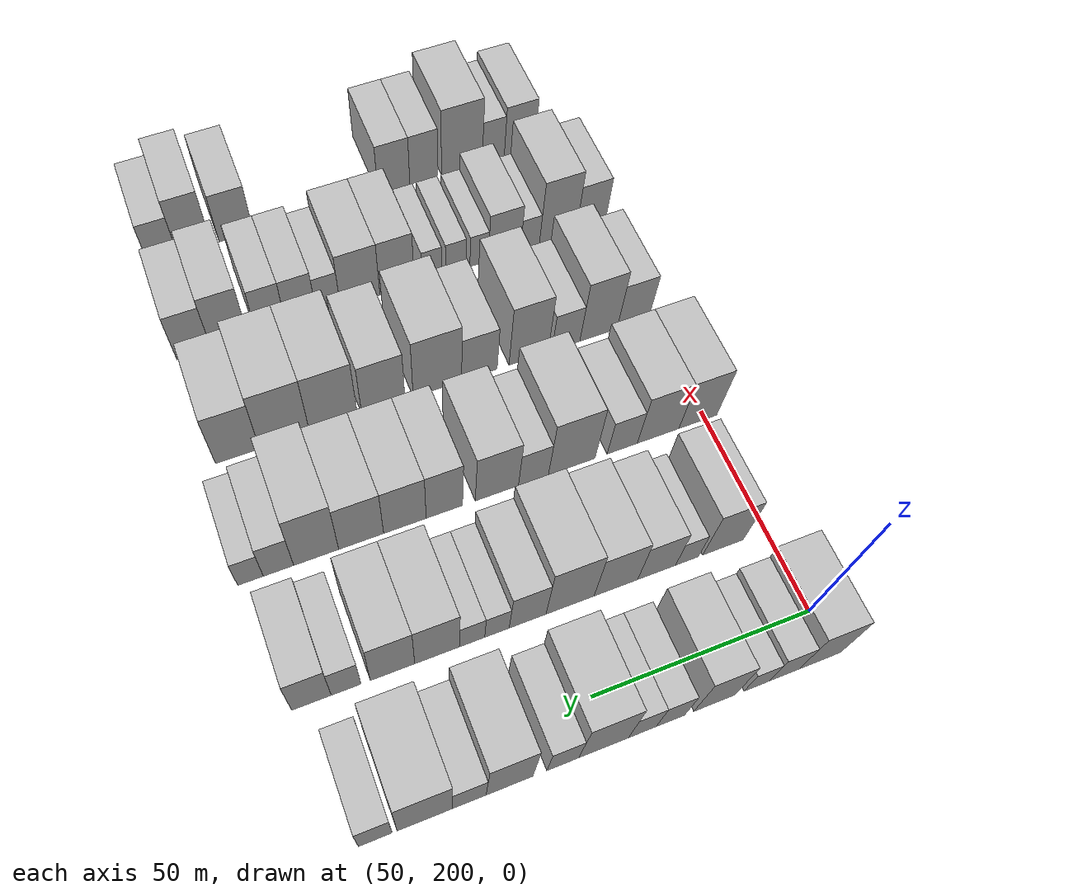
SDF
<sdf version="1.6">
 <world name="default">
  <model name="building_82">
   <static>1</static>
   <pose>50.0000 203.0942 0 0.000000 0.000000 0.000000</pose>
   <link name="link">
    <pose>0 0 10.50 0 0 0</pose>
    <collision name="collision"><geometry><box><size>20.0000 9.7704 21.0000</size></box></geometry></collision>
    <visual name="visual">
     <cast_shadows>0</cast_shadows>
     <geometry><box><size>20.0000 9.7704 21.0000</size></box></geometry>
     <material>
      <script>
       <uri>model://HANNAS_wall/materials/scripts</uri>
       <uri>model://HANNAS_wall/materials/textures</uri>
       <name>vrc/HANNAS_wall</name>
      </script>
     </material>
    </visual>
   </link>
  </model>
  <model name="building_83">
   <static>1</static>
   <pose>50.0000 211.3995 0 0.000000 0.000000 0.000000</pose>
   <link name="link">
    <pose>0 0 7.50 0 0 0</pose>
    <collision name="collision"><geometry><box><size>20.0000 6.8400 15.0000</size></box></geometry></collision>
    <visual name="visual">
     <cast_shadows>0</cast_shadows>
     <geometry><box><size>20.0000 6.8400 15.0000</size></box></geometry>
     <material>
      <script>
       <uri>model://HANNAS_wall/materials/scripts</uri>
       <uri>model://HANNAS_wall/materials/textures</uri>
       <name>vrc/HANNAS_wall</name>
      </script>
     </material>
    </visual>
   </link>
  </model>
  <model name="building_84">
   <static>1</static>
   <pose>50.0000 217.7072 0 0.000000 0.000000 0.000000</pose>
   <link name="link">
    <pose>0 0 6.00 0 0 0</pose>
    <collision name="collision"><geometry><box><size>20.0000 5.7755 12.0000</size></box></geometry></collision>
    <visual name="visual">
     <cast_shadows>0</cast_shadows>
     <geometry><box><size>20.0000 5.7755 12.0000</size></box></geometry>
     <material>
      <script>
       <uri>model://HANNAS_wall/materials/scripts</uri>
       <uri>model://HANNAS_wall/materials/textures</uri>
       <name>vrc/HANNAS_wall</name>
      </script>
     </material>
    </visual>
   </link>
  </model>
  <model name="building_85">
   <static>1</static>
   <pose>50.0000 227.2619 0 0.000000 0.000000 0.000000</pose>
   <link name="link">
    <pose>0 0 10.50 0 0 0</pose>
    <collision name="collision"><geometry><box><size>20.0000 9.3340 21.0000</size></box></geometry></collision>
    <visual name="visual">
     <cast_shadows>0</cast_shadows>
     <geometry><box><size>20.0000 9.3340 21.0000</size></box></geometry>
     <material>
      <script>
       <uri>model://HANNAS_wall/materials/scripts</uri>
       <uri>model://HANNAS_wall/materials/textures</uri>
       <name>vrc/HANNAS_wall</name>
      </script>
     </material>
    </visual>
   </link>
  </model>
  <model name="building_86">
   <static>1</static>
   <pose>50.0000 237.1040 0 0.000000 0.000000 0.000000</pose>
   <link name="link">
    <pose>0 0 7.50 0 0 0</pose>
    <collision name="collision"><geometry><box><size>20.0000 6.3502 15.0000</size></box></geometry></collision>
    <visual name="visual">
     <cast_shadows>0</cast_shadows>
     <geometry><box><size>20.0000 6.3502 15.0000</size></box></geometry>
     <material>
      <script>
       <uri>model://HANNAS_wall/materials/scripts</uri>
       <uri>model://HANNAS_wall/materials/textures</uri>
       <name>vrc/HANNAS_wall</name>
      </script>
     </material>
    </visual>
   </link>
  </model>
  <model name="building_87">
   <static>1</static>
   <pose>50.0000 243.3285 0 0.000000 0.000000 0.000000</pose>
   <link name="link">
    <pose>0 0 7.50 0 0 0</pose>
    <collision name="collision"><geometry><box><size>20.0000 6.0988 15.0000</size></box></geometry></collision>
    <visual name="visual">
     <cast_shadows>0</cast_shadows>
     <geometry><box><size>20.0000 6.0988 15.0000</size></box></geometry>
     <material>
      <script>
       <uri>model://HANNAS_wall/materials/scripts</uri>
       <uri>model://HANNAS_wall/materials/textures</uri>
       <name>vrc/HANNAS_wall</name>
      </script>
     </material>
    </visual>
   </link>
  </model>
  <model name="building_88">
   <static>1</static>
   <pose>50.0000 251.7895 0 0.000000 0.000000 0.000000</pose>
   <link name="link">
    <pose>0 0 12.00 0 0 0</pose>
    <collision name="collision"><geometry><box><size>20.0000 10.8230 24.0000</size></box></geometry></collision>
    <visual name="visual">
     <cast_shadows>0</cast_shadows>
     <geometry><box><size>20.0000 10.8230 24.0000</size></box></geometry>
     <material>
      <script>
       <uri>model://HANNAS_wall/materials/scripts</uri>
       <uri>model://HANNAS_wall/materials/textures</uri>
       <name>vrc/HANNAS_wall</name>
      </script>
     </material>
    </visual>
   </link>
  </model>
  <model name="building_89">
   <static>1</static>
   <pose>50.0000 260.6122 0 0.000000 0.000000 0.000000</pose>
   <link name="link">
    <pose>0 0 7.50 0 0 0</pose>
    <collision name="collision"><geometry><box><size>20.0000 6.8223 15.0000</size></box></geometry></collision>
    <visual name="visual">
     <cast_shadows>0</cast_shadows>
     <geometry><box><size>20.0000 6.8223 15.0000</size></box></geometry>
     <material>
      <script>
       <uri>model://HANNAS_wall/materials/scripts</uri>
       <uri>model://HANNAS_wall/materials/textures</uri>
       <name>vrc/HANNAS_wall</name>
      </script>
     </material>
    </visual>
   </link>
  </model>
  <model name="building_90">
   <static>1</static>
   <pose>50.0000 271.9466 0 0.000000 0.000000 0.000000</pose>
   <link name="link">
    <pose>0 0 12.00 0 0 0</pose>
    <collision name="collision"><geometry><box><size>20.0000 9.8465 24.0000</size></box></geometry></collision>
    <visual name="visual">
     <cast_shadows>0</cast_shadows>
     <geometry><box><size>20.0000 9.8465 24.0000</size></box></geometry>
     <material>
      <script>
       <uri>model://HANNAS_wall/materials/scripts</uri>
       <uri>model://HANNAS_wall/materials/textures</uri>
       <name>vrc/HANNAS_wall</name>
      </script>
     </material>
    </visual>
   </link>
  </model>
  <model name="building_91">
   <static>1</static>
   <pose>50.0000 280.3756 0 0.000000 0.000000 0.000000</pose>
   <link name="link">
    <pose>0 0 7.50 0 0 0</pose>
    <collision name="collision"><geometry><box><size>20.0000 7.0116 15.0000</size></box></geometry></collision>
    <visual name="visual">
     <cast_shadows>0</cast_shadows>
     <geometry><box><size>20.0000 7.0116 15.0000</size></box></geometry>
     <material>
      <script>
       <uri>model://HANNAS_wall/materials/scripts</uri>
       <uri>model://HANNAS_wall/materials/textures</uri>
       <name>vrc/HANNAS_wall</name>
      </script>
     </material>
    </visual>
   </link>
  </model>
  <model name="building_92">
   <static>1</static>
   <pose>50.0000 289.5427 0 0.000000 0.000000 0.000000</pose>
   <link name="link">
    <pose>0 0 12.00 0 0 0</pose>
    <collision name="collision"><geometry><box><size>20.0000 11.3225 24.0000</size></box></geometry></collision>
    <visual name="visual">
     <cast_shadows>0</cast_shadows>
     <geometry><box><size>20.0000 11.3225 24.0000</size></box></geometry>
     <material>
      <script>
       <uri>model://HANNAS_wall/materials/scripts</uri>
       <uri>model://HANNAS_wall/materials/textures</uri>
       <name>vrc/HANNAS_wall</name>
      </script>
     </material>
    </visual>
   </link>
  </model>
  <model name="building_93">
   <static>1</static>
   <pose>50.0000 299.6038 0 0.000000 0.000000 0.000000</pose>
   <link name="link">
    <pose>0 0 7.50 0 0 0</pose>
    <collision name="collision"><geometry><box><size>20.0000 6.7997 15.0000</size></box></geometry></collision>
    <visual name="visual">
     <cast_shadows>0</cast_shadows>
     <geometry><box><size>20.0000 6.7997 15.0000</size></box></geometry>
     <material>
      <script>
       <uri>model://HANNAS_wall/materials/scripts</uri>
       <uri>model://HANNAS_wall/materials/textures</uri>
       <name>vrc/HANNAS_wall</name>
      </script>
     </material>
    </visual>
   </link>
  </model>
  <model name="building_196">
   <static>1</static>
   <pose>79.0000 210.3995 0 0.000000 0.000000 0.000000</pose>
   <link name="link">
    <pose>0 0 10.50 0 0 0</pose>
    <collision name="collision"><geometry><box><size>20.0000 9.7364 21.0000</size></box></geometry></collision>
    <visual name="visual">
     <cast_shadows>0</cast_shadows>
     <geometry><box><size>20.0000 9.7364 21.0000</size></box></geometry>
     <material>
      <script>
       <uri>model://HANNAS_wall/materials/scripts</uri>
       <uri>model://HANNAS_wall/materials/textures</uri>
       <name>vrc/HANNAS_wall</name>
      </script>
     </material>
    </visual>
   </link>
  </model>
  <model name="building_197">
   <static>1</static>
   <pose>79.0000 218.9919 0 0.000000 0.000000 0.000000</pose>
   <link name="link">
    <pose>0 0 6.00 0 0 0</pose>
    <collision name="collision"><geometry><box><size>20.0000 5.4484 12.0000</size></box></geometry></collision>
    <visual name="visual">
     <cast_shadows>0</cast_shadows>
     <geometry><box><size>20.0000 5.4484 12.0000</size></box></geometry>
     <material>
      <script>
       <uri>model://HANNAS_wall/materials/scripts</uri>
       <uri>model://HANNAS_wall/materials/textures</uri>
       <name>vrc/HANNAS_wall</name>
      </script>
     </material>
    </visual>
   </link>
  </model>
  <model name="building_198">
   <static>1</static>
   <pose>79.0000 226.1891 0 0.000000 0.000000 0.000000</pose>
   <link name="link">
    <pose>0 0 9.00 0 0 0</pose>
    <collision name="collision"><geometry><box><size>20.0000 8.9461 18.0000</size></box></geometry></collision>
    <visual name="visual">
     <cast_shadows>0</cast_shadows>
     <geometry><box><size>20.0000 8.9461 18.0000</size></box></geometry>
     <material>
      <script>
       <uri>model://HANNAS_wall/materials/scripts</uri>
       <uri>model://HANNAS_wall/materials/textures</uri>
       <name>vrc/HANNAS_wall</name>
      </script>
     </material>
    </visual>
   </link>
  </model>
  <model name="building_199">
   <static>1</static>
   <pose>79.0000 235.7266 0 0.000000 0.000000 0.000000</pose>
   <link name="link">
    <pose>0 0 10.50 0 0 0</pose>
    <collision name="collision"><geometry><box><size>20.0000 10.1289 21.0000</size></box></geometry></collision>
    <visual name="visual">
     <cast_shadows>0</cast_shadows>
     <geometry><box><size>20.0000 10.1289 21.0000</size></box></geometry>
     <material>
      <script>
       <uri>model://HANNAS_wall/materials/scripts</uri>
       <uri>model://HANNAS_wall/materials/textures</uri>
       <name>vrc/HANNAS_wall</name>
      </script>
     </material>
    </visual>
   </link>
  </model>
  <model name="building_200">
   <static>1</static>
   <pose>79.0000 246.3133 0 0.000000 0.000000 0.000000</pose>
   <link name="link">
    <pose>0 0 12.00 0 0 0</pose>
    <collision name="collision"><geometry><box><size>20.0000 11.0445 24.0000</size></box></geometry></collision>
    <visual name="visual">
     <cast_shadows>0</cast_shadows>
     <geometry><box><size>20.0000 11.0445 24.0000</size></box></geometry>
     <material>
      <script>
       <uri>model://HANNAS_wall/materials/scripts</uri>
       <uri>model://HANNAS_wall/materials/textures</uri>
       <name>vrc/HANNAS_wall</name>
      </script>
     </material>
    </visual>
   </link>
  </model>
  <model name="building_201">
   <static>1</static>
   <pose>79.0000 255.9763 0 0.000000 0.000000 0.000000</pose>
   <link name="link">
    <pose>0 0 9.00 0 0 0</pose>
    <collision name="collision"><geometry><box><size>20.0000 8.2816 18.0000</size></box></geometry></collision>
    <visual name="visual">
     <cast_shadows>0</cast_shadows>
     <geometry><box><size>20.0000 8.2816 18.0000</size></box></geometry>
     <material>
      <script>
       <uri>model://HANNAS_wall/materials/scripts</uri>
       <uri>model://HANNAS_wall/materials/textures</uri>
       <name>vrc/HANNAS_wall</name>
      </script>
     </material>
    </visual>
   </link>
  </model>
  <model name="building_202">
   <static>1</static>
   <pose>79.0000 262.8572 0 0.000000 0.000000 0.000000</pose>
   <link name="link">
    <pose>0 0 6.00 0 0 0</pose>
    <collision name="collision"><geometry><box><size>20.0000 5.4803 12.0000</size></box></geometry></collision>
    <visual name="visual">
     <cast_shadows>0</cast_shadows>
     <geometry><box><size>20.0000 5.4803 12.0000</size></box></geometry>
     <material>
      <script>
       <uri>model://HANNAS_wall/materials/scripts</uri>
       <uri>model://HANNAS_wall/materials/textures</uri>
       <name>vrc/HANNAS_wall</name>
      </script>
     </material>
    </visual>
   </link>
  </model>
  <model name="building_203">
   <static>1</static>
   <pose>79.0000 268.4112 0 0.000000 0.000000 0.000000</pose>
   <link name="link">
    <pose>0 0 6.00 0 0 0</pose>
    <collision name="collision"><geometry><box><size>20.0000 5.6276 12.0000</size></box></geometry></collision>
    <visual name="visual">
     <cast_shadows>0</cast_shadows>
     <geometry><box><size>20.0000 5.6276 12.0000</size></box></geometry>
     <material>
      <script>
       <uri>model://HANNAS_wall/materials/scripts</uri>
       <uri>model://HANNAS_wall/materials/textures</uri>
       <name>vrc/HANNAS_wall</name>
      </script>
     </material>
    </visual>
   </link>
  </model>
  <model name="building_204">
   <static>1</static>
   <pose>79.0000 276.1174 0 0.000000 0.000000 0.000000</pose>
   <link name="link">
    <pose>0 0 10.50 0 0 0</pose>
    <collision name="collision"><geometry><box><size>20.0000 9.7848 21.0000</size></box></geometry></collision>
    <visual name="visual">
     <cast_shadows>0</cast_shadows>
     <geometry><box><size>20.0000 9.7848 21.0000</size></box></geometry>
     <material>
      <script>
       <uri>model://HANNAS_wall/materials/scripts</uri>
       <uri>model://HANNAS_wall/materials/textures</uri>
       <name>vrc/HANNAS_wall</name>
      </script>
     </material>
    </visual>
   </link>
  </model>
  <model name="building_205">
   <static>1</static>
   <pose>79.0000 285.8160 0 0.000000 0.000000 0.000000</pose>
   <link name="link">
    <pose>0 0 10.50 0 0 0</pose>
    <collision name="collision"><geometry><box><size>20.0000 9.6124 21.0000</size></box></geometry></collision>
    <visual name="visual">
     <cast_shadows>0</cast_shadows>
     <geometry><box><size>20.0000 9.6124 21.0000</size></box></geometry>
     <material>
      <script>
       <uri>model://HANNAS_wall/materials/scripts</uri>
       <uri>model://HANNAS_wall/materials/textures</uri>
       <name>vrc/HANNAS_wall</name>
      </script>
     </material>
    </visual>
   </link>
  </model>
  <model name="building_206">
   <static>1</static>
   <pose>79.0000 295.7962 0 0.000000 0.000000 0.000000</pose>
   <link name="link">
    <pose>0 0 7.50 0 0 0</pose>
    <collision name="collision"><geometry><box><size>20.0000 6.3478 15.0000</size></box></geometry></collision>
    <visual name="visual">
     <cast_shadows>0</cast_shadows>
     <geometry><box><size>20.0000 6.3478 15.0000</size></box></geometry>
     <material>
      <script>
       <uri>model://HANNAS_wall/materials/scripts</uri>
       <uri>model://HANNAS_wall/materials/textures</uri>
       <name>vrc/HANNAS_wall</name>
      </script>
     </material>
    </visual>
   </link>
  </model>
  <model name="building_207">
   <static>1</static>
   <pose>79.0000 303.1531 0 0.000000 0.000000 0.000000</pose>
   <link name="link">
    <pose>0 0 9.00 0 0 0</pose>
    <collision name="collision"><geometry><box><size>20.0000 8.3661 18.0000</size></box></geometry></collision>
    <visual name="visual">
     <cast_shadows>0</cast_shadows>
     <geometry><box><size>20.0000 8.3661 18.0000</size></box></geometry>
     <material>
      <script>
       <uri>model://HANNAS_wall/materials/scripts</uri>
       <uri>model://HANNAS_wall/materials/textures</uri>
       <name>vrc/HANNAS_wall</name>
      </script>
     </material>
    </visual>
   </link>
  </model>
  <model name="building_305">
   <static>1</static>
   <pose>108.0000 201.8275 0 0.000000 0.000000 0.000000</pose>
   <link name="link">
    <pose>0 0 10.50 0 0 0</pose>
    <collision name="collision"><geometry><box><size>20.0000 9.5673 21.0000</size></box></geometry></collision>
    <visual name="visual">
     <cast_shadows>0</cast_shadows>
     <geometry><box><size>20.0000 9.5673 21.0000</size></box></geometry>
     <material>
      <script>
       <uri>model://HANNAS_wall/materials/scripts</uri>
       <uri>model://HANNAS_wall/materials/textures</uri>
       <name>vrc/HANNAS_wall</name>
      </script>
     </material>
    </visual>
   </link>
  </model>
  <model name="building_306">
   <static>1</static>
   <pose>108.0000 211.8323 0 0.000000 0.000000 0.000000</pose>
   <link name="link">
    <pose>0 0 10.50 0 0 0</pose>
    <collision name="collision"><geometry><box><size>20.0000 10.4422 21.0000</size></box></geometry></collision>
    <visual name="visual">
     <cast_shadows>0</cast_shadows>
     <geometry><box><size>20.0000 10.4422 21.0000</size></box></geometry>
     <material>
      <script>
       <uri>model://HANNAS_wall/materials/scripts</uri>
       <uri>model://HANNAS_wall/materials/textures</uri>
       <name>vrc/HANNAS_wall</name>
      </script>
     </material>
    </visual>
   </link>
  </model>
  <model name="building_307">
   <static>1</static>
   <pose>108.0000 220.7727 0 0.000000 0.000000 0.000000</pose>
   <link name="link">
    <pose>0 0 7.50 0 0 0</pose>
    <collision name="collision"><geometry><box><size>20.0000 7.4386 15.0000</size></box></geometry></collision>
    <visual name="visual">
     <cast_shadows>0</cast_shadows>
     <geometry><box><size>20.0000 7.4386 15.0000</size></box></geometry>
     <material>
      <script>
       <uri>model://HANNAS_wall/materials/scripts</uri>
       <uri>model://HANNAS_wall/materials/textures</uri>
       <name>vrc/HANNAS_wall</name>
      </script>
     </material>
    </visual>
   </link>
  </model>
  <model name="building_308">
   <static>1</static>
   <pose>108.0000 233.1559 0 0.000000 0.000000 0.000000</pose>
   <link name="link">
    <pose>0 0 12.00 0 0 0</pose>
    <collision name="collision"><geometry><box><size>20.0000 11.3278 24.0000</size></box></geometry></collision>
    <visual name="visual">
     <cast_shadows>0</cast_shadows>
     <geometry><box><size>20.0000 11.3278 24.0000</size></box></geometry>
     <material>
      <script>
       <uri>model://HANNAS_wall/materials/scripts</uri>
       <uri>model://HANNAS_wall/materials/textures</uri>
       <name>vrc/HANNAS_wall</name>
      </script>
     </material>
    </visual>
   </link>
  </model>
  <model name="building_309">
   <static>1</static>
   <pose>108.0000 242.4204 0 0.000000 0.000000 0.000000</pose>
   <link name="link">
    <pose>0 0 7.50 0 0 0</pose>
    <collision name="collision"><geometry><box><size>20.0000 7.2013 15.0000</size></box></geometry></collision>
    <visual name="visual">
     <cast_shadows>0</cast_shadows>
     <geometry><box><size>20.0000 7.2013 15.0000</size></box></geometry>
     <material>
      <script>
       <uri>model://HANNAS_wall/materials/scripts</uri>
       <uri>model://HANNAS_wall/materials/textures</uri>
       <name>vrc/HANNAS_wall</name>
      </script>
     </material>
    </visual>
   </link>
  </model>
  <model name="building_310">
   <static>1</static>
   <pose>108.0000 251.1534 0 0.000000 0.000000 0.000000</pose>
   <link name="link">
    <pose>0 0 10.50 0 0 0</pose>
    <collision name="collision"><geometry><box><size>20.0000 10.2647 21.0000</size></box></geometry></collision>
    <visual name="visual">
     <cast_shadows>0</cast_shadows>
     <geometry><box><size>20.0000 10.2647 21.0000</size></box></geometry>
     <material>
      <script>
       <uri>model://HANNAS_wall/materials/scripts</uri>
       <uri>model://HANNAS_wall/materials/textures</uri>
       <name>vrc/HANNAS_wall</name>
      </script>
     </material>
    </visual>
   </link>
  </model>
  <model name="building_311">
   <static>1</static>
   <pose>108.0000 263.5348 0 0.000000 0.000000 0.000000</pose>
   <link name="link">
    <pose>0 0 10.50 0 0 0</pose>
    <collision name="collision"><geometry><box><size>20.0000 8.4982 21.0000</size></box></geometry></collision>
    <visual name="visual">
     <cast_shadows>0</cast_shadows>
     <geometry><box><size>20.0000 8.4982 21.0000</size></box></geometry>
     <material>
      <script>
       <uri>model://HANNAS_wall/materials/scripts</uri>
       <uri>model://HANNAS_wall/materials/textures</uri>
       <name>vrc/HANNAS_wall</name>
      </script>
     </material>
    </visual>
   </link>
  </model>
  <model name="building_312">
   <static>1</static>
   <pose>108.0000 272.6797 0 0.000000 0.000000 0.000000</pose>
   <link name="link">
    <pose>0 0 10.50 0 0 0</pose>
    <collision name="collision"><geometry><box><size>20.0000 9.7916 21.0000</size></box></geometry></collision>
    <visual name="visual">
     <cast_shadows>0</cast_shadows>
     <geometry><box><size>20.0000 9.7916 21.0000</size></box></geometry>
     <material>
      <script>
       <uri>model://HANNAS_wall/materials/scripts</uri>
       <uri>model://HANNAS_wall/materials/textures</uri>
       <name>vrc/HANNAS_wall</name>
      </script>
     </material>
    </visual>
   </link>
  </model>
  <model name="building_313">
   <static>1</static>
   <pose>108.0000 282.6864 0 0.000000 0.000000 0.000000</pose>
   <link name="link">
    <pose>0 0 10.50 0 0 0</pose>
    <collision name="collision"><geometry><box><size>20.0000 10.2218 21.0000</size></box></geometry></collision>
    <visual name="visual">
     <cast_shadows>0</cast_shadows>
     <geometry><box><size>20.0000 10.2218 21.0000</size></box></geometry>
     <material>
      <script>
       <uri>model://HANNAS_wall/materials/scripts</uri>
       <uri>model://HANNAS_wall/materials/textures</uri>
       <name>vrc/HANNAS_wall</name>
      </script>
     </material>
    </visual>
   </link>
  </model>
  <model name="building_314">
   <static>1</static>
   <pose>108.0000 292.8584 0 0.000000 0.000000 0.000000</pose>
   <link name="link">
    <pose>0 0 12.00 0 0 0</pose>
    <collision name="collision"><geometry><box><size>20.0000 10.1221 24.0000</size></box></geometry></collision>
    <visual name="visual">
     <cast_shadows>0</cast_shadows>
     <geometry><box><size>20.0000 10.1221 24.0000</size></box></geometry>
     <material>
      <script>
       <uri>model://HANNAS_wall/materials/scripts</uri>
       <uri>model://HANNAS_wall/materials/textures</uri>
       <name>vrc/HANNAS_wall</name>
      </script>
     </material>
    </visual>
   </link>
  </model>
  <model name="building_315">
   <static>1</static>
   <pose>108.0000 301.2908 0 0.000000 0.000000 0.000000</pose>
   <link name="link">
    <pose>0 0 7.50 0 0 0</pose>
    <collision name="collision"><geometry><box><size>20.0000 6.7427 15.0000</size></box></geometry></collision>
    <visual name="visual">
     <cast_shadows>0</cast_shadows>
     <geometry><box><size>20.0000 6.7427 15.0000</size></box></geometry>
     <material>
      <script>
       <uri>model://HANNAS_wall/materials/scripts</uri>
       <uri>model://HANNAS_wall/materials/textures</uri>
       <name>vrc/HANNAS_wall</name>
      </script>
     </material>
    </visual>
   </link>
  </model>
  <model name="building_316">
   <static>1</static>
   <pose>108.0000 307.4865 0 0.000000 0.000000 0.000000</pose>
   <link name="link">
    <pose>0 0 6.00 0 0 0</pose>
    <collision name="collision"><geometry><box><size>20.0000 5.6486 12.0000</size></box></geometry></collision>
    <visual name="visual">
     <cast_shadows>0</cast_shadows>
     <geometry><box><size>20.0000 5.6486 12.0000</size></box></geometry>
     <material>
      <script>
       <uri>model://HANNAS_wall/materials/scripts</uri>
       <uri>model://HANNAS_wall/materials/textures</uri>
       <name>vrc/HANNAS_wall</name>
      </script>
     </material>
    </visual>
   </link>
  </model>
  <model name="building_430">
   <static>1</static>
   <pose>137.0000 204.5075 0 0.000000 0.000000 0.000000</pose>
   <link name="link">
    <pose>0 0 9.00 0 0 0</pose>
    <collision name="collision"><geometry><box><size>20.0000 8.3211 18.0000</size></box></geometry></collision>
    <visual name="visual">
     <cast_shadows>0</cast_shadows>
     <geometry><box><size>20.0000 8.3211 18.0000</size></box></geometry>
     <material>
      <script>
       <uri>model://HANNAS_wall/materials/scripts</uri>
       <uri>model://HANNAS_wall/materials/textures</uri>
       <name>vrc/HANNAS_wall</name>
      </script>
     </material>
    </visual>
   </link>
  </model>
  <model name="building_431">
   <static>1</static>
   <pose>137.0000 213.4879 0 0.000000 0.000000 0.000000</pose>
   <link name="link">
    <pose>0 0 12.00 0 0 0</pose>
    <collision name="collision"><geometry><box><size>20.0000 9.6398 24.0000</size></box></geometry></collision>
    <visual name="visual">
     <cast_shadows>0</cast_shadows>
     <geometry><box><size>20.0000 9.6398 24.0000</size></box></geometry>
     <material>
      <script>
       <uri>model://HANNAS_wall/materials/scripts</uri>
       <uri>model://HANNAS_wall/materials/textures</uri>
       <name>vrc/HANNAS_wall</name>
      </script>
     </material>
    </visual>
   </link>
  </model>
  <model name="building_432">
   <static>1</static>
   <pose>137.0000 221.9005 0 0.000000 0.000000 0.000000</pose>
   <link name="link">
    <pose>0 0 7.50 0 0 0</pose>
    <collision name="collision"><geometry><box><size>20.0000 7.1854 15.0000</size></box></geometry></collision>
    <visual name="visual">
     <cast_shadows>0</cast_shadows>
     <geometry><box><size>20.0000 7.1854 15.0000</size></box></geometry>
     <material>
      <script>
       <uri>model://HANNAS_wall/materials/scripts</uri>
       <uri>model://HANNAS_wall/materials/textures</uri>
       <name>vrc/HANNAS_wall</name>
      </script>
     </material>
    </visual>
   </link>
  </model>
  <model name="building_433">
   <static>1</static>
   <pose>137.0000 231.4417 0 0.000000 0.000000 0.000000</pose>
   <link name="link">
    <pose>0 0 12.00 0 0 0</pose>
    <collision name="collision"><geometry><box><size>20.0000 9.8970 24.0000</size></box></geometry></collision>
    <visual name="visual">
     <cast_shadows>0</cast_shadows>
     <geometry><box><size>20.0000 9.8970 24.0000</size></box></geometry>
     <material>
      <script>
       <uri>model://HANNAS_wall/materials/scripts</uri>
       <uri>model://HANNAS_wall/materials/textures</uri>
       <name>vrc/HANNAS_wall</name>
      </script>
     </material>
    </visual>
   </link>
  </model>
  <model name="building_434">
   <static>1</static>
   <pose>137.0000 243.8460 0 0.000000 0.000000 0.000000</pose>
   <link name="link">
    <pose>0 0 9.00 0 0 0</pose>
    <collision name="collision"><geometry><box><size>20.0000 8.9115 18.0000</size></box></geometry></collision>
    <visual name="visual">
     <cast_shadows>0</cast_shadows>
     <geometry><box><size>20.0000 8.9115 18.0000</size></box></geometry>
     <material>
      <script>
       <uri>model://HANNAS_wall/materials/scripts</uri>
       <uri>model://HANNAS_wall/materials/textures</uri>
       <name>vrc/HANNAS_wall</name>
      </script>
     </material>
    </visual>
   </link>
  </model>
  <model name="building_435">
   <static>1</static>
   <pose>137.0000 254.2575 0 0.000000 0.000000 0.000000</pose>
   <link name="link">
    <pose>0 0 12.00 0 0 0</pose>
    <collision name="collision"><geometry><box><size>20.0000 11.9115 24.0000</size></box></geometry></collision>
    <visual name="visual">
     <cast_shadows>0</cast_shadows>
     <geometry><box><size>20.0000 11.9115 24.0000</size></box></geometry>
     <material>
      <script>
       <uri>model://HANNAS_wall/materials/scripts</uri>
       <uri>model://HANNAS_wall/materials/textures</uri>
       <name>vrc/HANNAS_wall</name>
      </script>
     </material>
    </visual>
   </link>
  </model>
  <model name="building_436">
   <static>1</static>
   <pose>137.0000 267.4556 0 0.000000 0.000000 0.000000</pose>
   <link name="link">
    <pose>0 0 10.50 0 0 0</pose>
    <collision name="collision"><geometry><box><size>20.0000 10.4846 21.0000</size></box></geometry></collision>
    <visual name="visual">
     <cast_shadows>0</cast_shadows>
     <geometry><box><size>20.0000 10.4846 21.0000</size></box></geometry>
     <material>
      <script>
       <uri>model://HANNAS_wall/materials/scripts</uri>
       <uri>model://HANNAS_wall/materials/textures</uri>
       <name>vrc/HANNAS_wall</name>
      </script>
     </material>
    </visual>
   </link>
  </model>
  <model name="building_437">
   <static>1</static>
   <pose>137.0000 279.4305 0 0.000000 0.000000 0.000000</pose>
   <link name="link">
    <pose>0 0 12.00 0 0 0</pose>
    <collision name="collision"><geometry><box><size>20.0000 11.4652 24.0000</size></box></geometry></collision>
    <visual name="visual">
     <cast_shadows>0</cast_shadows>
     <geometry><box><size>20.0000 11.4652 24.0000</size></box></geometry>
     <material>
      <script>
       <uri>model://HANNAS_wall/materials/scripts</uri>
       <uri>model://HANNAS_wall/materials/textures</uri>
       <name>vrc/HANNAS_wall</name>
      </script>
     </material>
    </visual>
   </link>
  </model>
  <model name="building_438">
   <static>1</static>
   <pose>137.0000 291.0336 0 0.000000 0.000000 0.000000</pose>
   <link name="link">
    <pose>0 0 12.00 0 0 0</pose>
    <collision name="collision"><geometry><box><size>20.0000 11.7411 24.0000</size></box></geometry></collision>
    <visual name="visual">
     <cast_shadows>0</cast_shadows>
     <geometry><box><size>20.0000 11.7411 24.0000</size></box></geometry>
     <material>
      <script>
       <uri>model://HANNAS_wall/materials/scripts</uri>
       <uri>model://HANNAS_wall/materials/textures</uri>
       <name>vrc/HANNAS_wall</name>
      </script>
     </material>
    </visual>
   </link>
  </model>
  <model name="building_439">
   <static>1</static>
   <pose>137.0000 302.0445 0 0.000000 0.000000 0.000000</pose>
   <link name="link">
    <pose>0 0 10.50 0 0 0</pose>
    <collision name="collision"><geometry><box><size>20.0000 10.2808 21.0000</size></box></geometry></collision>
    <visual name="visual">
     <cast_shadows>0</cast_shadows>
     <geometry><box><size>20.0000 10.2808 21.0000</size></box></geometry>
     <material>
      <script>
       <uri>model://HANNAS_wall/materials/scripts</uri>
       <uri>model://HANNAS_wall/materials/textures</uri>
       <name>vrc/HANNAS_wall</name>
      </script>
     </material>
    </visual>
   </link>
  </model>
  <model name="building_548">
   <static>1</static>
   <pose>166.0000 202.5418 0 0.000000 0.000000 0.000000</pose>
   <link name="link">
    <pose>0 0 9.00 0 0 0</pose>
    <collision name="collision"><geometry><box><size>20.0000 7.8719 18.0000</size></box></geometry></collision>
    <visual name="visual">
     <cast_shadows>0</cast_shadows>
     <geometry><box><size>20.0000 7.8719 18.0000</size></box></geometry>
     <material>
      <script>
       <uri>model://HANNAS_wall/materials/scripts</uri>
       <uri>model://HANNAS_wall/materials/textures</uri>
       <name>vrc/HANNAS_wall</name>
      </script>
     </material>
    </visual>
   </link>
  </model>
  <model name="building_549">
   <static>1</static>
   <pose>166.0000 211.4430 0 0.000000 0.000000 0.000000</pose>
   <link name="link">
    <pose>0 0 12.00 0 0 0</pose>
    <collision name="collision"><geometry><box><size>20.0000 9.9305 24.0000</size></box></geometry></collision>
    <visual name="visual">
     <cast_shadows>0</cast_shadows>
     <geometry><box><size>20.0000 9.9305 24.0000</size></box></geometry>
     <material>
      <script>
       <uri>model://HANNAS_wall/materials/scripts</uri>
       <uri>model://HANNAS_wall/materials/textures</uri>
       <name>vrc/HANNAS_wall</name>
      </script>
     </material>
    </visual>
   </link>
  </model>
  <model name="building_550">
   <static>1</static>
   <pose>166.0000 218.9135 0 0.000000 0.000000 0.000000</pose>
   <link name="link">
    <pose>0 0 6.00 0 0 0</pose>
    <collision name="collision"><geometry><box><size>20.0000 5.0106 12.0000</size></box></geometry></collision>
    <visual name="visual">
     <cast_shadows>0</cast_shadows>
     <geometry><box><size>20.0000 5.0106 12.0000</size></box></geometry>
     <material>
      <script>
       <uri>model://HANNAS_wall/materials/scripts</uri>
       <uri>model://HANNAS_wall/materials/textures</uri>
       <name>vrc/HANNAS_wall</name>
      </script>
     </material>
    </visual>
   </link>
  </model>
  <model name="building_551">
   <static>1</static>
   <pose>166.0000 225.7073 0 0.000000 0.000000 0.000000</pose>
   <link name="link">
    <pose>0 0 9.00 0 0 0</pose>
    <collision name="collision"><geometry><box><size>20.0000 8.5770 18.0000</size></box></geometry></collision>
    <visual name="visual">
     <cast_shadows>0</cast_shadows>
     <geometry><box><size>20.0000 8.5770 18.0000</size></box></geometry>
     <material>
      <script>
       <uri>model://HANNAS_wall/materials/scripts</uri>
       <uri>model://HANNAS_wall/materials/textures</uri>
       <name>vrc/HANNAS_wall</name>
      </script>
     </material>
    </visual>
   </link>
  </model>
  <model name="building_552">
   <static>1</static>
   <pose>166.0000 232.4330 0 0.000000 0.000000 0.000000</pose>
   <link name="link">
    <pose>0 0 6.00 0 0 0</pose>
    <collision name="collision"><geometry><box><size>20.0000 4.8745 12.0000</size></box></geometry></collision>
    <visual name="visual">
     <cast_shadows>0</cast_shadows>
     <geometry><box><size>20.0000 4.8745 12.0000</size></box></geometry>
     <material>
      <script>
       <uri>model://HANNAS_wall/materials/scripts</uri>
       <uri>model://HANNAS_wall/materials/textures</uri>
       <name>vrc/HANNAS_wall</name>
      </script>
     </material>
    </visual>
   </link>
  </model>
  <model name="building_553">
   <static>1</static>
   <pose>166.0000 238.5643 0 0.000000 0.000000 0.000000</pose>
   <link name="link">
    <pose>0 0 6.00 0 0 0</pose>
    <collision name="collision"><geometry><box><size>20.0000 5.3881 12.0000</size></box></geometry></collision>
    <visual name="visual">
     <cast_shadows>0</cast_shadows>
     <geometry><box><size>20.0000 5.3881 12.0000</size></box></geometry>
     <material>
      <script>
       <uri>model://HANNAS_wall/materials/scripts</uri>
       <uri>model://HANNAS_wall/materials/textures</uri>
       <name>vrc/HANNAS_wall</name>
      </script>
     </material>
    </visual>
   </link>
  </model>
  <model name="building_554">
   <static>1</static>
   <pose>166.0000 244.8218 0 0.000000 0.000000 0.000000</pose>
   <link name="link">
    <pose>0 0 6.00 0 0 0</pose>
    <collision name="collision"><geometry><box><size>20.0000 5.1269 12.0000</size></box></geometry></collision>
    <visual name="visual">
     <cast_shadows>0</cast_shadows>
     <geometry><box><size>20.0000 5.1269 12.0000</size></box></geometry>
     <material>
      <script>
       <uri>model://HANNAS_wall/materials/scripts</uri>
       <uri>model://HANNAS_wall/materials/textures</uri>
       <name>vrc/HANNAS_wall</name>
      </script>
     </material>
    </visual>
   </link>
  </model>
  <model name="building_555">
   <static>1</static>
   <pose>166.0000 253.7748 0 0.000000 0.000000 0.000000</pose>
   <link name="link">
    <pose>0 0 10.50 0 0 0</pose>
    <collision name="collision"><geometry><box><size>20.0000 8.7790 21.0000</size></box></geometry></collision>
    <visual name="visual">
     <cast_shadows>0</cast_shadows>
     <geometry><box><size>20.0000 8.7790 21.0000</size></box></geometry>
     <material>
      <script>
       <uri>model://HANNAS_wall/materials/scripts</uri>
       <uri>model://HANNAS_wall/materials/textures</uri>
       <name>vrc/HANNAS_wall</name>
      </script>
     </material>
    </visual>
   </link>
  </model>
  <model name="building_556">
   <static>1</static>
   <pose>166.0000 263.1674 0 0.000000 0.000000 0.000000</pose>
   <link name="link">
    <pose>0 0 10.50 0 0 0</pose>
    <collision name="collision"><geometry><box><size>20.0000 10.0062 21.0000</size></box></geometry></collision>
    <visual name="visual">
     <cast_shadows>0</cast_shadows>
     <geometry><box><size>20.0000 10.0062 21.0000</size></box></geometry>
     <material>
      <script>
       <uri>model://HANNAS_wall/materials/scripts</uri>
       <uri>model://HANNAS_wall/materials/textures</uri>
       <name>vrc/HANNAS_wall</name>
      </script>
     </material>
    </visual>
   </link>
  </model>
  <model name="building_557">
   <static>1</static>
   <pose>166.0000 271.1738 0 0.000000 0.000000 0.000000</pose>
   <link name="link">
    <pose>0 0 7.50 0 0 0</pose>
    <collision name="collision"><geometry><box><size>20.0000 6.0066 15.0000</size></box></geometry></collision>
    <visual name="visual">
     <cast_shadows>0</cast_shadows>
     <geometry><box><size>20.0000 6.0066 15.0000</size></box></geometry>
     <material>
      <script>
       <uri>model://HANNAS_wall/materials/scripts</uri>
       <uri>model://HANNAS_wall/materials/textures</uri>
       <name>vrc/HANNAS_wall</name>
      </script>
     </material>
    </visual>
   </link>
  </model>
  <model name="building_558">
   <static>1</static>
   <pose>166.0000 278.0010 0 0.000000 0.000000 0.000000</pose>
   <link name="link">
    <pose>0 0 9.00 0 0 0</pose>
    <collision name="collision"><geometry><box><size>20.0000 7.6478 18.0000</size></box></geometry></collision>
    <visual name="visual">
     <cast_shadows>0</cast_shadows>
     <geometry><box><size>20.0000 7.6478 18.0000</size></box></geometry>
     <material>
      <script>
       <uri>model://HANNAS_wall/materials/scripts</uri>
       <uri>model://HANNAS_wall/materials/textures</uri>
       <name>vrc/HANNAS_wall</name>
      </script>
     </material>
    </visual>
   </link>
  </model>
  <model name="building_559">
   <static>1</static>
   <pose>166.0000 285.4922 0 0.000000 0.000000 0.000000</pose>
   <link name="link">
    <pose>0 0 9.00 0 0 0</pose>
    <collision name="collision"><geometry><box><size>20.0000 7.3347 18.0000</size></box></geometry></collision>
    <visual name="visual">
     <cast_shadows>0</cast_shadows>
     <geometry><box><size>20.0000 7.3347 18.0000</size></box></geometry>
     <material>
      <script>
       <uri>model://HANNAS_wall/materials/scripts</uri>
       <uri>model://HANNAS_wall/materials/textures</uri>
       <name>vrc/HANNAS_wall</name>
      </script>
     </material>
    </visual>
   </link>
  </model>
  <model name="building_560">
   <static>1</static>
   <pose>166.0000 295.6848 0 0.000000 0.000000 0.000000</pose>
   <link name="link">
    <pose>0 0 10.50 0 0 0</pose>
    <collision name="collision"><geometry><box><size>20.0000 9.0505 21.0000</size></box></geometry></collision>
    <visual name="visual">
     <cast_shadows>0</cast_shadows>
     <geometry><box><size>20.0000 9.0505 21.0000</size></box></geometry>
     <material>
      <script>
       <uri>model://HANNAS_wall/materials/scripts</uri>
       <uri>model://HANNAS_wall/materials/textures</uri>
       <name>vrc/HANNAS_wall</name>
      </script>
     </material>
    </visual>
   </link>
  </model>
  <model name="building_561">
   <static>1</static>
   <pose>166.0000 304.3785 0 0.000000 0.000000 0.000000</pose>
   <link name="link">
    <pose>0 0 9.00 0 0 0</pose>
    <collision name="collision"><geometry><box><size>20.0000 8.3368 18.0000</size></box></geometry></collision>
    <visual name="visual">
     <cast_shadows>0</cast_shadows>
     <geometry><box><size>20.0000 8.3368 18.0000</size></box></geometry>
     <material>
      <script>
       <uri>model://HANNAS_wall/materials/scripts</uri>
       <uri>model://HANNAS_wall/materials/textures</uri>
       <name>vrc/HANNAS_wall</name>
      </script>
     </material>
    </visual>
   </link>
  </model>
  <model name="building_657">
   <static>1</static>
   <pose>195.0000 209.6678 0 0.000000 0.000000 0.000000</pose>
   <link name="link">
    <pose>0 0 9.00 0 0 0</pose>
    <collision name="collision"><geometry><box><size>20.0000 8.5079 18.0000</size></box></geometry></collision>
    <visual name="visual">
     <cast_shadows>0</cast_shadows>
     <geometry><box><size>20.0000 8.5079 18.0000</size></box></geometry>
     <material>
      <script>
       <uri>model://HANNAS_wall/materials/scripts</uri>
       <uri>model://HANNAS_wall/materials/textures</uri>
       <name>vrc/HANNAS_wall</name>
      </script>
     </material>
    </visual>
   </link>
  </model>
  <model name="building_658">
   <static>1</static>
   <pose>195.0000 217.0064 0 0.000000 0.000000 0.000000</pose>
   <link name="link">
    <pose>0 0 7.50 0 0 0</pose>
    <collision name="collision"><geometry><box><size>20.0000 6.1693 15.0000</size></box></geometry></collision>
    <visual name="visual">
     <cast_shadows>0</cast_shadows>
     <geometry><box><size>20.0000 6.1693 15.0000</size></box></geometry>
     <material>
      <script>
       <uri>model://HANNAS_wall/materials/scripts</uri>
       <uri>model://HANNAS_wall/materials/textures</uri>
       <name>vrc/HANNAS_wall</name>
      </script>
     </material>
    </visual>
   </link>
  </model>
  <model name="building_659">
   <static>1</static>
   <pose>195.0000 225.7191 0 0.000000 0.000000 0.000000</pose>
   <link name="link">
    <pose>0 0 12.00 0 0 0</pose>
    <collision name="collision"><geometry><box><size>20.0000 11.2561 24.0000</size></box></geometry></collision>
    <visual name="visual">
     <cast_shadows>0</cast_shadows>
     <geometry><box><size>20.0000 11.2561 24.0000</size></box></geometry>
     <material>
      <script>
       <uri>model://HANNAS_wall/materials/scripts</uri>
       <uri>model://HANNAS_wall/materials/textures</uri>
       <name>vrc/HANNAS_wall</name>
      </script>
     </material>
    </visual>
   </link>
  </model>
  <model name="building_660">
   <static>1</static>
   <pose>195.0000 236.1663 0 0.000000 0.000000 0.000000</pose>
   <link name="link">
    <pose>0 0 9.00 0 0 0</pose>
    <collision name="collision"><geometry><box><size>20.0000 7.6382 18.0000</size></box></geometry></collision>
    <visual name="visual">
     <cast_shadows>0</cast_shadows>
     <geometry><box><size>20.0000 7.6382 18.0000</size></box></geometry>
     <material>
      <script>
       <uri>model://HANNAS_wall/materials/scripts</uri>
       <uri>model://HANNAS_wall/materials/textures</uri>
       <name>vrc/HANNAS_wall</name>
      </script>
     </material>
    </visual>
   </link>
  </model>
  <model name="building_661">
   <static>1</static>
   <pose>195.0000 244.2963 0 0.000000 0.000000 0.000000</pose>
   <link name="link">
    <pose>0 0 9.00 0 0 0</pose>
    <collision name="collision"><geometry><box><size>20.0000 8.6218 18.0000</size></box></geometry></collision>
    <visual name="visual">
     <cast_shadows>0</cast_shadows>
     <geometry><box><size>20.0000 8.6218 18.0000</size></box></geometry>
     <material>
      <script>
       <uri>model://HANNAS_wall/materials/scripts</uri>
       <uri>model://HANNAS_wall/materials/textures</uri>
       <name>vrc/HANNAS_wall</name>
      </script>
     </material>
    </visual>
   </link>
  </model>
  <model name="building_662">
   <static>1</static>
   <pose>195.0000 285.8649 0 0.000000 0.000000 0.000000</pose>
   <link name="link">
    <pose>0 0 9.00 0 0 0</pose>
    <collision name="collision"><geometry><box><size>20.0000 8.8385 18.0000</size></box></geometry></collision>
    <visual name="visual">
     <cast_shadows>0</cast_shadows>
     <geometry><box><size>20.0000 8.8385 18.0000</size></box></geometry>
     <material>
      <script>
       <uri>model://HANNAS_wall/materials/scripts</uri>
       <uri>model://HANNAS_wall/materials/textures</uri>
       <name>vrc/HANNAS_wall</name>
      </script>
     </material>
    </visual>
   </link>
  </model>
  <model name="building_663">
   <static>1</static>
   <pose>195.0000 296.5676 0 0.000000 0.000000 0.000000</pose>
   <link name="link">
    <pose>0 0 10.50 0 0 0</pose>
    <collision name="collision"><geometry><box><size>20.0000 8.5671 21.0000</size></box></geometry></collision>
    <visual name="visual">
     <cast_shadows>0</cast_shadows>
     <geometry><box><size>20.0000 8.5671 21.0000</size></box></geometry>
     <material>
      <script>
       <uri>model://HANNAS_wall/materials/scripts</uri>
       <uri>model://HANNAS_wall/materials/textures</uri>
       <name>vrc/HANNAS_wall</name>
      </script>
     </material>
    </visual>
   </link>
  </model>
  <model name="building_664">
   <static>1</static>
   <pose>195.0000 304.5968 0 0.000000 0.000000 0.000000</pose>
   <link name="link">
    <pose>0 0 7.50 0 0 0</pose>
    <collision name="collision"><geometry><box><size>20.0000 7.4913 15.0000</size></box></geometry></collision>
    <visual name="visual">
     <cast_shadows>0</cast_shadows>
     <geometry><box><size>20.0000 7.4913 15.0000</size></box></geometry>
     <material>
      <script>
       <uri>model://HANNAS_wall/materials/scripts</uri>
       <uri>model://HANNAS_wall/materials/textures</uri>
       <name>vrc/HANNAS_wall</name>
      </script>
     </material>
    </visual>
   </link>
  </model>
 </world>
</sdf>
